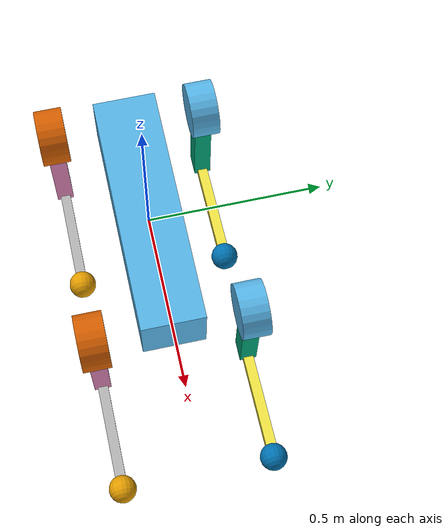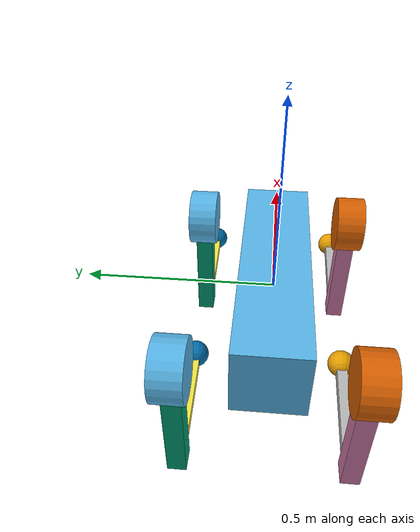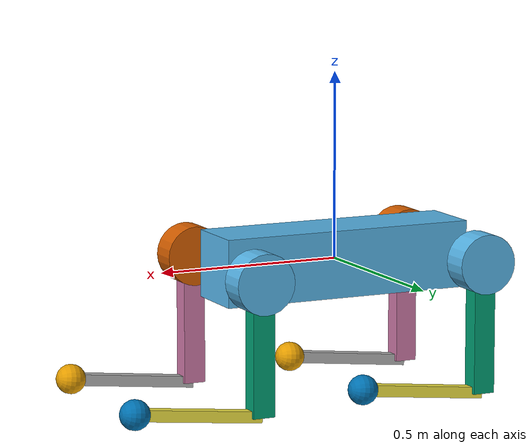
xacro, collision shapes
<?xml version="1.0"?>
<robot name="b2" xmlns:xacro="http://www.ros.org/wiki/xacro">

    <xacro:arg name="prefix" default="" />

    <xacro:include filename="$(find b2_pkg)/xacro/const.xacro"/>
    <xacro:include filename="$(find b2_pkg)/xacro/materials.xacro"/>
    <xacro:include filename="$(find b2_pkg)/xacro/leg.xacro"/>

    <link name="$(arg prefix)base_link">
        <visual>
            <origin rpy="0 0 0" xyz="0 0 0"/>
            <geometry>
                <box size="0.001 0.001 0.001"/>
            </geometry>
        </visual>
    </link>

    <joint name="$(arg prefix)floating_base" type="fixed">
        <origin rpy="0 0 0" xyz="0 0 0"/>
        <parent link="$(arg prefix)base_link"/>
        <child link="$(arg prefix)trunk"/>
    </joint>

    <link name="$(arg prefix)trunk">
        <visual>
            <origin rpy="0 0 0" xyz="0 0 0"/>
            <geometry>
                <mesh filename="package://b2_pkg/meshes/trunk.dae" scale="1 1 1"/>
            </geometry>
        </visual>
        <collision>
            <origin rpy="0 0 0" xyz="0 0 0"/>
            <geometry>
                <box size="${trunk_length} ${trunk_width} ${trunk_height}"/>
            </geometry>
        </collision>
        <inertial>
            <origin rpy="0 0 0" xyz="${trunk_com_x} ${trunk_com_y} ${trunk_com_z}"/>
            <mass value="${trunk_mass}"/>
            <inertia
                ixx="${trunk_ixx}" ixy="${trunk_ixy}" ixz="${trunk_ixz}"
                iyy="${trunk_iyy}" iyz="${trunk_iyz}"
                izz="${trunk_izz}"/>
        </inertial>
    </link>

    <!-- BotBrain payload mounting plate. The B2 has a flat dorsal mounting
         surface at roughly 0.21m above base_link. Adjust if you use the
         alternative B2 mounting kit. -->
    <joint name="$(arg prefix)interface_joint" type="fixed">
        <origin rpy="0 0 0" xyz="0.040 0 0.210"/>
        <parent link="$(arg prefix)base_link"/>
        <child link="$(arg prefix)interface_link"/>
    </joint>

    <link name="$(arg prefix)interface_link">
        <visual>
            <origin rpy="0 0 0" xyz="0 0 0"/>
            <geometry>
                <mesh filename="package://b2_pkg/meshes/b2_interface.stl" scale="1 1 1"/>
            </geometry>
        </visual>
    </link>

    <joint name="$(arg prefix)imu_joint" type="fixed">
        <parent link="$(arg prefix)trunk"/>
        <child link="$(arg prefix)imu_link"/>
        <origin rpy="0 0 0" xyz="0 0 0"/>
    </joint>

    <link name="$(arg prefix)imu_link">
        <inertial>
            <mass value="0.001"/>
            <origin rpy="0 0 0" xyz="0 0 0"/>
            <inertia ixx="0.0001" ixy="0" ixz="0" iyy="0.0001" iyz="0" izz="0.0001"/>
        </inertial>
        <visual>
            <origin rpy="0 0 0" xyz="0 0 0"/>
            <geometry>
                <box size="0.001 0.001 0.001"/>
            </geometry>
        </visual>
        <collision>
            <origin rpy="0 0 0" xyz="0 0 0"/>
            <geometry>
                <box size=".001 .001 .001"/>
            </geometry>
        </collision>
    </link>

    <link name="$(arg prefix)radar">
        <inertial>
            <origin xyz="0 0 0" rpy="0 0 0"/>
            <mass value="0"/>
            <inertia ixx="0" ixy="0" ixz="0" iyy="0" iyz="0" izz="0"/>
        </inertial>
    </link>
    <joint name="$(arg prefix)radar_joint" type="fixed">
        <!-- B2 head LiDAR mount sits forward of base_link. -->
        <origin xyz="0.500 0 -0.060" rpy="0 2.8782 0"/>
        <parent link="$(arg prefix)base_link"/>
        <child link="$(arg prefix)radar"/>
        <axis xyz="0 0 0"/>
    </joint>

    <xacro:leg prefix="$(arg prefix)" name="FR" mirror="-1" mirror_dae="False" front_hind="1"  front_hind_dae="True"  />
    <xacro:leg prefix="$(arg prefix)" name="FL" mirror="1"  mirror_dae="True"  front_hind="1"  front_hind_dae="True"  />
    <xacro:leg prefix="$(arg prefix)" name="RR" mirror="-1" mirror_dae="False" front_hind="-1" front_hind_dae="False" />
    <xacro:leg prefix="$(arg prefix)" name="RL" mirror="1"  mirror_dae="True"  front_hind="-1" front_hind_dae="False" />
</robot>

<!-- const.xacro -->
<robot xmlns:xacro="http://www.ros.org/wiki/xacro">

    <!-- Constants for robot dimensions -->
    <xacro:property name="PI" value="3.1415926535897931"/>
    <xacro:property name="stick_mass" value="0.00001"/>

    <!-- Simplified collision values (B2 trunk is ~1.10m long, 0.45m wide, 0.16m tall). -->
    <xacro:property name="trunk_width"  value="0.180"/>
    <xacro:property name="trunk_length" value="0.700"/>
    <xacro:property name="trunk_height" value="0.180"/>
    <xacro:property name="hip_radius" value="0.080"/>
    <xacro:property name="hip_length" value="0.080"/>
    <xacro:property name="thigh_shoulder_radius" value="0.075"/>
    <xacro:property name="thigh_shoulder_length" value="0.060"/>
    <xacro:property name="thigh_width"  value="0.050"/>
    <xacro:property name="thigh_height" value="0.060"/>
    <xacro:property name="calf_width"  value="0.030"/>
    <xacro:property name="calf_height" value="0.030"/>
    <xacro:property name="foot_radius" value="0.040"/>
    <xacro:property name="stick_radius" value="0.020"/>
    <xacro:property name="stick_length" value="0.40"/>

    <!-- Kinematics (B2 thigh/calf are roughly twice the Go2 length). -->
    <xacro:property name="thigh_offset" value="0.150"/>
    <xacro:property name="thigh_length" value="0.350"/>
    <xacro:property name="calf_length"  value="0.350"/>

    <!-- Leg offset from trunk center. -->
    <xacro:property name="leg_offset_x" value="0.3215"/>
    <xacro:property name="leg_offset_y" value="0.072"/>
    <xacro:property name="hip_offset"   value="0.150"/>

    <!-- Offset of link locations (left front). -->
    <xacro:property name="hip_offset_x" value="0.3215"/>
    <xacro:property name="hip_offset_y" value="0.072"/>
    <xacro:property name="hip_offset_z" value="0.0"/>

    <xacro:property name="thigh_offset_x" value="0"/>
    <xacro:property name="thigh_offset_y" value="0.150"/>
    <xacro:property name="thigh_offset_z" value="0.0"/>

    <xacro:property name="calf_offset_x" value="0.0"/>
    <xacro:property name="calf_offset_y" value="0.0"/>
    <xacro:property name="calf_offset_z" value="-0.350"/>

    <!-- Joint limits. B2 motors are much stronger than Go2; values are
         taken from Unitree's published B2 specification. -->
    <xacro:property name="damping" value="0.0"/>
    <xacro:property name="friction" value="0.0"/>
    <xacro:property name="hip_position_max" value="0.87"/>
    <xacro:property name="hip_position_min" value="-0.87"/>
    <xacro:property name="hip_velocity_max" value="20.0"/>
    <xacro:property name="hip_torque_max" value="200.0"/>
    <xacro:property name="thigh_position_max" value="3.49"/>
    <xacro:property name="thigh_position_min" value="-1.57"/>
    <xacro:property name="thigh_velocity_max" value="20.0"/>
    <xacro:property name="thigh_torque_max" value="200.0"/>
    <xacro:property name="calf_position_max" value="-0.65"/>
    <xacro:property name="calf_position_min" value="-2.72"/>
    <xacro:property name="calf_velocity_max" value="15.0"/>
    <xacro:property name="calf_torque_max" value="320.0"/>

    <!-- Inertial values. B2 weighs ~60 kg total (~32 kg trunk). -->
    <!-- Trunk -->
    <xacro:property name="trunk_mass" value="32.0"/>
    <xacro:property name="trunk_com_x" value="0.030"/>
    <xacro:property name="trunk_com_y" value="0.00"/>
    <xacro:property name="trunk_com_z" value="-0.010"/>
    <xacro:property name="trunk_ixx" value="0.45"/>
    <xacro:property name="trunk_ixy" value="0.0"/>
    <xacro:property name="trunk_ixz" value="0.005"/>
    <xacro:property name="trunk_iyy" value="2.20"/>
    <xacro:property name="trunk_iyz" value="0.0"/>
    <xacro:property name="trunk_izz" value="2.30"/>

    <!-- Hip (left front) -->
    <xacro:property name="hip_mass" value="2.30"/>
    <xacro:property name="hip_com_x" value="-0.010"/>
    <xacro:property name="hip_com_y" value="0.005"/>
    <xacro:property name="hip_com_z" value="-0.0005"/>
    <xacro:property name="hip_ixx" value="0.0050"/>
    <xacro:property name="hip_ixy" value="0.0"/>
    <xacro:property name="hip_ixz" value="0.0"/>
    <xacro:property name="hip_iyy" value="0.0090"/>
    <xacro:property name="hip_iyz" value="0.0"/>
    <xacro:property name="hip_izz" value="0.0060"/>

    <!-- Thigh -->
    <xacro:property name="thigh_mass" value="3.40"/>
    <xacro:property name="thigh_com_x" value="-0.005"/>
    <xacro:property name="thigh_com_y" value="-0.030"/>
    <xacro:property name="thigh_com_z" value="-0.060"/>
    <xacro:property name="thigh_ixx" value="0.030"/>
    <xacro:property name="thigh_ixy" value="0.0"/>
    <xacro:property name="thigh_ixz" value="-0.001"/>
    <xacro:property name="thigh_iyy" value="0.030"/>
    <xacro:property name="thigh_iyz" value="0.002"/>
    <xacro:property name="thigh_izz" value="0.006"/>

    <!-- Calf -->
    <xacro:property name="calf_mass" value="0.70"/>
    <xacro:property name="calf_com_x" value="0.005"/>
    <xacro:property name="calf_com_y" value="-0.001"/>
    <xacro:property name="calf_com_z" value="-0.180"/>
    <xacro:property name="calf_ixx" value="0.0080"/>
    <xacro:property name="calf_ixy" value="0.0"/>
    <xacro:property name="calf_ixz" value="0.0"/>
    <xacro:property name="calf_iyy" value="0.0080"/>
    <xacro:property name="calf_iyz" value="0.0"/>
    <xacro:property name="calf_izz" value="0.0003"/>

    <!-- Foot -->
    <xacro:property name="foot_mass" value="0.20"/>

</robot>

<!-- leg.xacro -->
<robot xmlns:xacro="http://www.ros.org/wiki/xacro">

    <xacro:macro name="leg" params="prefix name mirror mirror_dae front_hind front_hind_dae">

        <joint name="${prefix}${name}_hip_joint" type="revolute">
            <xacro:if value="${(mirror_dae == False) and (front_hind_dae == True)}">
                <origin rpy="0 0 0" xyz="${leg_offset_x} ${-leg_offset_y} 0"/>
            </xacro:if>
            <xacro:if value="${(mirror_dae == True) and (front_hind_dae == True)}">
                <origin rpy="0 0 0" xyz="${leg_offset_x} ${leg_offset_y} 0"/>
            </xacro:if>
            <xacro:if value="${(mirror_dae == False) and (front_hind_dae == False)}">
                <origin rpy="0 0 0" xyz="${-leg_offset_x} ${-leg_offset_y} 0"/>
            </xacro:if>
            <xacro:if value="${(mirror_dae == True) and (front_hind_dae == False)}">
                <origin rpy="0 0 0" xyz="${-leg_offset_x} ${leg_offset_y} 0"/>
            </xacro:if>
            <parent link="${prefix}trunk"/>
            <child link="${prefix}${name}_hip"/>
            <axis xyz="1 0 0"/>
            <dynamics damping="${damping}" friction="${friction}"/>
            <xacro:if value="${(mirror_dae == True)}">
                <limit effort="${hip_torque_max}" velocity="${hip_velocity_max}" lower="${hip_position_min}" upper="${hip_position_max}"/>
            </xacro:if>
            <xacro:if value="${(mirror_dae == False)}">
                <limit effort="${hip_torque_max}" velocity="${hip_velocity_max}" lower="${-hip_position_max}" upper="${-hip_position_min}"/>
            </xacro:if>
        </joint>

        <link name="${prefix}${name}_hip">
            <visual>
                <xacro:if value="${(mirror_dae == True) and (front_hind_dae == True)}">
                    <origin rpy="0 0 0" xyz="0 0 0"/>
                </xacro:if>
                <xacro:if value="${(mirror_dae == False) and (front_hind_dae == True)}">
                    <origin rpy="${PI} 0 0" xyz="0 0 0"/>
                </xacro:if>
                <xacro:if value="${(mirror_dae == True) and (front_hind_dae == False)}">
                    <origin rpy="0 ${PI} 0" xyz="0 0 0"/>
                </xacro:if>
                <xacro:if value="${(mirror_dae == False) and (front_hind_dae == False)}">
                    <origin rpy="${PI} ${PI} 0" xyz="0 0 0"/>
                </xacro:if>
                <geometry>
                    <mesh filename="package://b2_pkg/meshes/hip.dae" scale="1 1 1"/>
                </geometry>
            </visual>
            <collision>
                <origin rpy="${PI/2.0} 0 0" xyz="0 ${hip_offset*mirror} 0"/>
                <geometry>
                    <cylinder length="${hip_length}" radius="${hip_radius}"/>
                </geometry>
            </collision>
            <inertial>
                <origin rpy="0 0 0" xyz="${hip_com_x*front_hind} ${hip_com_y*mirror} ${hip_com_z}"/>
                <mass value="${hip_mass}"/>
                <inertia
                    ixx="${hip_ixx}" ixy="${hip_ixy*mirror*front_hind}" ixz="${hip_ixz*front_hind}"
                    iyy="${hip_iyy}" iyz="${hip_iyz*mirror}"
                    izz="${hip_izz}"/>
            </inertial>
        </link>

        <joint name="${prefix}${name}_thigh_joint" type="revolute">
            <origin rpy="0 0 0" xyz="0 ${thigh_offset*mirror} 0"/>
            <parent link="${prefix}${name}_hip"/>
            <child link="${prefix}${name}_thigh"/>
            <axis xyz="0 1 0"/>
            <dynamics damping="${damping}" friction="${friction}"/>
            <limit effort="${thigh_torque_max}" velocity="${thigh_velocity_max}" lower="${thigh_position_min}" upper="${thigh_position_max}"/>
        </joint>

        <link name="${prefix}${name}_thigh">
            <visual>
                <origin rpy="0 0 0" xyz="0 0 0"/>
                <geometry>
                    <xacro:if value="${mirror_dae == True}">
                        <mesh filename="package://b2_pkg/meshes/thigh.dae" scale="1 1 1"/>
                    </xacro:if>
                    <xacro:if value="${mirror_dae == False}">
                        <mesh filename="package://b2_pkg/meshes/thigh_mirror.dae" scale="1 1 1"/>
                    </xacro:if>
                </geometry>
            </visual>
            <collision>
                <origin rpy="0 ${PI/2.0} 0" xyz="0 0 ${-thigh_length/2.0}"/>
                <geometry>
                    <box size="${thigh_length} ${thigh_width} ${thigh_height}"/>
                </geometry>
            </collision>
            <inertial>
                <origin rpy="0 0 0" xyz="${thigh_com_x} ${thigh_com_y*mirror} ${thigh_com_z}"/>
                <mass value="${thigh_mass}"/>
                <inertia
                    ixx="${thigh_ixx}" ixy="${thigh_ixy*mirror}" ixz="${thigh_ixz}"
                    iyy="${thigh_iyy}" iyz="${thigh_iyz*mirror}"
                    izz="${thigh_izz}"/>
            </inertial>
        </link>

        <joint name="${prefix}${name}_calf_joint" type="revolute">
            <origin rpy="0 0 0" xyz="0 0 ${-thigh_length}"/>
            <parent link="${prefix}${name}_thigh"/>
            <child link="${prefix}${name}_calf"/>
            <axis xyz="0 1 0"/>
            <dynamics damping="${damping}" friction="${friction}"/>
            <limit effort="${calf_torque_max}" velocity="${calf_velocity_max}" lower="${calf_position_min}" upper="${calf_position_max}"/>
        </joint>

        <link name="${prefix}${name}_calf">
            <visual>
                <origin rpy="0 0 0" xyz="0 0 0"/>
                <geometry>
                    <mesh filename="package://b2_pkg/meshes/calf.dae" scale="1 1 1"/>
                </geometry>
            </visual>
            <collision>
                <origin rpy="0 ${PI/2.0} 0" xyz="0 0 ${-calf_length/2.0}"/>
                <geometry>
                    <box size="${calf_length} ${calf_width} ${calf_height}"/>
                </geometry>
            </collision>
            <inertial>
                <origin rpy="0 0 0" xyz="${calf_com_x} ${calf_com_y} ${calf_com_z}"/>
                <mass value="${calf_mass}"/>
                <inertia
                    ixx="${calf_ixx}" ixy="${calf_ixy}" ixz="${calf_ixz}"
                    iyy="${calf_iyy}" iyz="${calf_iyz}"
                    izz="${calf_izz}"/>
            </inertial>
        </link>

        <joint name="${prefix}${name}_foot_fixed" type="fixed">
            <origin rpy="0 0 0" xyz="0 0 ${-(calf_length)}"/>
            <parent link="${prefix}${name}_calf"/>
            <child link="${prefix}${name}_foot"/>
        </joint>

        <link name="${prefix}${name}_foot">
            <visual>
                <origin rpy="0 0 0" xyz="0 0 0"/>
                <geometry>
                    <sphere radius="${foot_radius-0.01}"/>
                </geometry>
            </visual>
            <collision>
                <origin rpy="0 0 0" xyz="0 0 0"/>
                <geometry>
                    <sphere radius="${foot_radius}"/>
                </geometry>
            </collision>
            <inertial>
                <mass value="${foot_mass}"/>
                <inertia
                    ixx="${(2*foot_mass)/5.0*(foot_radius*foot_radius)}" ixy="0.0" ixz="0.0"
                    iyy="${(2*foot_mass)/5.0*(foot_radius*foot_radius)}" iyz="0.0"
                    izz="${(2*foot_mass)/5.0*(foot_radius*foot_radius)}"/>
            </inertial>
        </link>

    </xacro:macro>
</robot>
